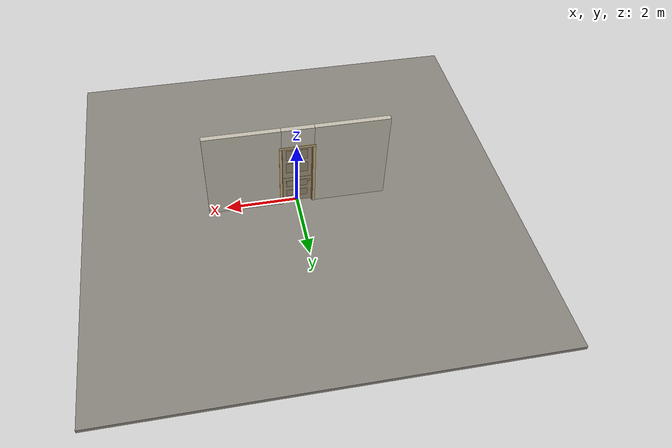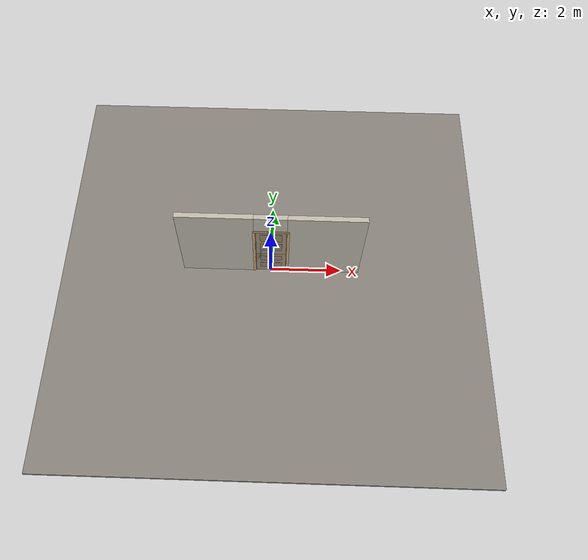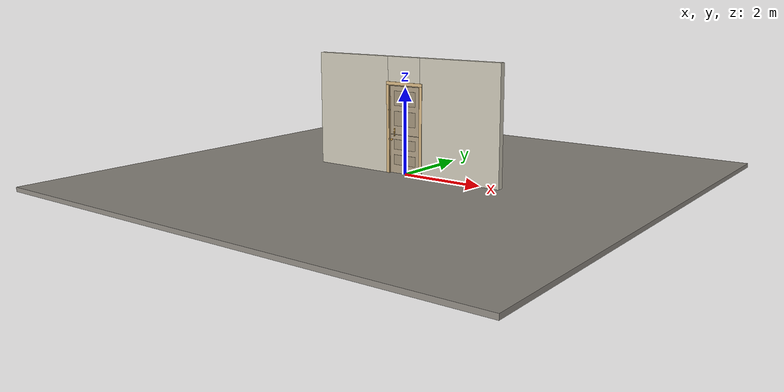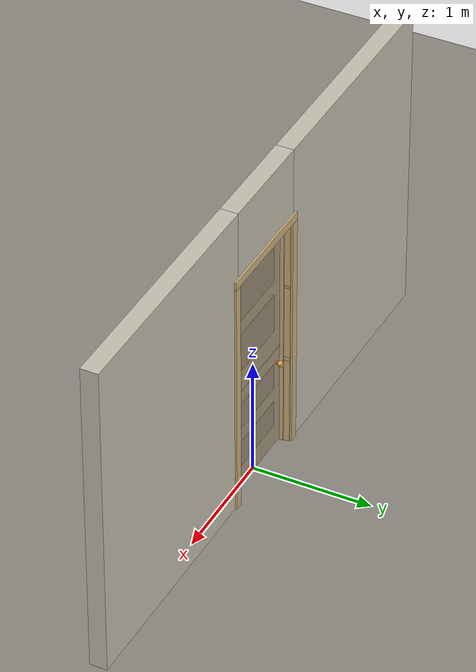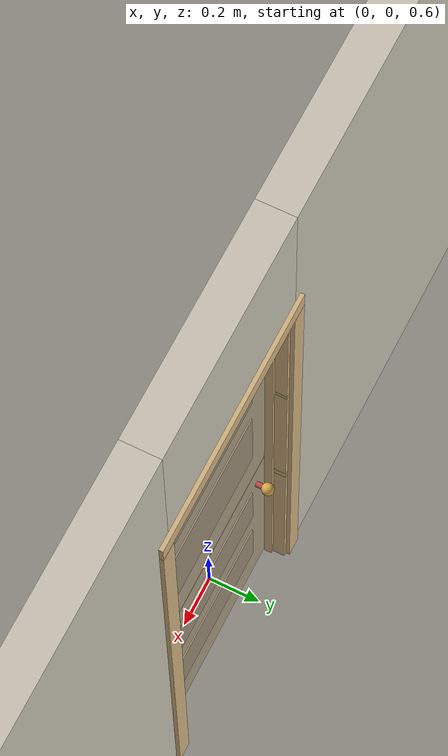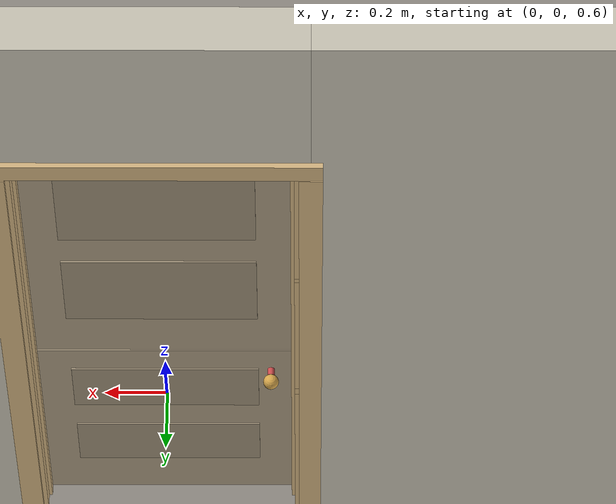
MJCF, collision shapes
<?xml version="1.0" ?>
<mujoco model="db0423_dutch_full">
  <compiler angle="radian" meshdir="../../hardware" texturedir="../../textures" autolimits="true" inertiafromgeom="false"/>
  <option timestep="0.002" integrator="implicitfast" cone="elliptic" impratio="10" noslip_iterations="3">
    <flag multiccd="enable"/>
  </option>
  <size memory="16M"/>
  <default>
    <geom condim="4" solref="0.005 1" solimp="0.95 0.99 0.001"/>
    <joint solreflimit="0.005 1" solimplimit="0.95 0.99 0.001"/>
    <tendon solreflimit="0.005 1"/>
    <equality solref="0.002 1"/>
  </default>
  <visual>
    <headlight ambient="0.4 0.4 0.4" diffuse="0.7 0.7 0.7" specular="0.2 0.2 0.2"/>
    <quality shadowsize="4096"/>
    <map znear="0.01" zfar="60"/>
  </visual>
  <asset>
    <mesh name="hinge_e22b26c0c1" file="hinge_e22b26c0c1.obj"/>
    <mesh name="hinge_jamb_e1d088f8dc" file="hinge_jamb_e1d088f8dc.obj"/>
    <mesh name="knob_d1888f6f03" file="knob_d1888f6f03.obj"/>
    <material name="mat_floor" rgba="0.55 0.53 0.5 1" specular="0.2" shininess="0.15" reflectance="0"/>
    <material name="mat_wall" rgba="0.78 0.76 0.7 1" specular="0.2" shininess="0.1" reflectance="0"/>
    <material name="mat_leaf_lower" rgba="0.66 0.6 0.5 1" specular="0.2" shininess="0.45" reflectance="0"/>
    <material name="mat_leaf_lower_panel" rgba="0.607 0.552 0.46 1" specular="0.2" shininess="0.45" reflectance="0"/>
    <material name="mat_leaf_upper" rgba="0.66 0.6 0.5 1" specular="0.2" shininess="0.45" reflectance="0"/>
    <material name="mat_leaf_upper_panel" rgba="0.607 0.552 0.46 1" specular="0.2" shininess="0.45" reflectance="0"/>
    <material name="mat_op_brass" rgba="0.85 0.66 0.3 1" specular="0.8" shininess="0.75" reflectance="0.4"/>
    <material name="mat_trim" rgba="0.85 0.66 0.3 1" specular="0.8" shininess="0.75" reflectance="0.4"/>
    <material name="mat_bolt" rgba="0.85 0.66 0.3 1" specular="0.8" shininess="0.75" reflectance="0.4"/>
    <material name="mat_joinbolt" rgba="0.85 0.66 0.3 1" specular="0.8" shininess="0.75" reflectance="0.4"/>
    <material name="mat_frame" rgba="0.82 0.7 0.5 1" specular="0.2" shininess="0.45" reflectance="0"/>
    <material name="mat_hinge" rgba="0.65 0.66 0.68 1" specular="0.74" shininess="0.5" reflectance="0.36"/>
    <texture name="skybox" type="skybox" builtin="gradient" rgb1="0.6 0.7 0.85" rgb2="0.9 0.92 0.95" width="256" height="256"/>
  </asset>
  <worldbody>
    <light name="sun" pos="1.5 -2.5 4" dir="-0.3 0.5 -0.8" directional="true" diffuse="0.8 0.8 0.8" specular="0.3 0.3 0.3" castshadow="true"/>
    <light name="fill" pos="-1.5 2.5 3" dir="0.3 -0.5 -0.7" directional="true" diffuse="0.35 0.35 0.4" castshadow="false"/>
    <camera name="robot_view" pos="0 -2.511687 1.734312" xyaxes="1 0 0 0 0.26963 0.962964" fovy="52"/>
    <camera name="far_view" pos="0 2.572687 1.734312" xyaxes="-1 0 0 0 -0.26963 0.962964" fovy="52"/>
    <camera name="iso" pos="-1.932062 -2.104938 2.141063" xyaxes="0.741536 -0.670913 0 0.242917 0.268487 0.932151" fovy="46"/>
    <camera name="detail_handle" pos="-0.1555 -0.8685 1.074" xyaxes="0.97561 0.219512 0 -0.070934 0.315262 0.94635" fovy="38"/>
    <geom name="floor" type="box" size="6 6 0.05" pos="0 0 -0.05" material="mat_floor" group="0" contype="1" conaffinity="1" friction="0.8 0.005 0.0001" density="2400"/>
    <geom name="wall_left" type="box" size="1.02025 0.0725 1.35" pos="-1.47975 0.0305 1.35" material="mat_wall" group="0" contype="1" conaffinity="1" friction="0.6 0.005 0.0001" density="800"/>
    <geom name="wall_right" type="box" size="1.03525 0.0725 1.35" pos="1.46475 0.0305 1.35" material="mat_wall" group="0" contype="1" conaffinity="1" friction="0.6 0.005 0.0001" density="800"/>
    <geom name="wall_header" type="box" size="0.4445 0.0725 0.303" pos="-0.015 0.0305 2.397" material="mat_wall" group="0" contype="1" conaffinity="1" friction="0.6 0.005 0.0001" density="800"/>
    <geom name="jamb_hinge" type="box" size="0.0095 0.0725 1.0225" pos="0.42 0.0305 1.0225" material="mat_frame" group="0" contype="1" conaffinity="1" friction="0.6 0.005 0.0001" density="400"/>
    <geom name="strike_794_wall_n" type="box" size="0.0245 0.047575 0.0167" pos="-0.435 0.055425 0.794" material="mat_frame" group="0" contype="1" conaffinity="1" friction="0.6 0.005 0.0001" density="400"/>
    <geom name="strike_794_wall_p" type="box" size="0.0245 0.008 0.0167" pos="-0.435 -0.01585 0.794" material="mat_frame" group="0" contype="1" conaffinity="1" friction="0.6 0.005 0.0001" density="400"/>
    <geom name="strike_794_ramp" type="box" size="0.0245 0.020268 0.0167" pos="-0.440408 -0.034645 0.794" quat="0.985179 0 0 -0.171531" material="mat_frame" group="0" contype="1" conaffinity="1" friction="0.12 0.005 0.0001" density="400"/>
    <geom name="strike_794_back" type="box" size="0.01615 0.00785 0.0167" pos="-0.44335 0 0.794" material="mat_frame" group="0" contype="1" conaffinity="1" friction="0.6 0.005 0.0001" density="400"/>
    <geom name="strike_1473_wall_n" type="box" size="0.0245 0.04775 0.01" pos="-0.435 0.05525 1.473" material="mat_frame" group="0" contype="1" conaffinity="1" friction="0.6 0.005 0.0001" density="400"/>
    <geom name="strike_1473_wall_p" type="box" size="0.0245 0.008 0.01" pos="-0.435 -0.0155 1.473" material="mat_frame" group="0" contype="1" conaffinity="1" friction="0.6 0.005 0.0001" density="400"/>
    <geom name="strike_1473_ramp" type="box" size="0.0245 0.019412 0.01" pos="-0.437296 -0.039595 1.473" quat="0.997916 0 0 -0.064529" material="mat_frame" group="0" contype="1" conaffinity="1" friction="0.12 0.005 0.0001" density="400"/>
    <geom name="strike_1473_ramp_n" type="box" size="0.0245 0.019412 0.01" pos="-0.437296 0.027595 1.473" quat="0.997916 0 0 0.064529" material="mat_frame" group="0" contype="1" conaffinity="1" friction="0.12 0.005 0.0001" density="400"/>
    <geom name="strike_1473_back" type="box" size="0.0205 0.0075 0.01" pos="-0.439 0 1.473" material="mat_frame" group="0" contype="1" conaffinity="1" friction="0.6 0.005 0.0001" density="400"/>
    <geom name="jamb_strike_0" type="box" size="0.0245 0.0725 0.38865" pos="-0.435 0.0305 0.38865" material="mat_frame" group="0" contype="1" conaffinity="1" friction="0.6 0.005 0.0001" density="400"/>
    <geom name="jamb_strike_1" type="box" size="0.0245 0.0725 0.32615" pos="-0.435 0.0305 1.13685" material="mat_frame" group="0" contype="1" conaffinity="1" friction="0.6 0.005 0.0001" density="400"/>
    <geom name="jamb_strike_2" type="box" size="0.0245 0.0725 0.281" pos="-0.435 0.0305 1.764" material="mat_frame" group="0" contype="1" conaffinity="1" friction="0.6 0.005 0.0001" density="400"/>
    <geom name="jamb_head" type="box" size="0.4445 0.0725 0.0095" pos="-0.015 0.0305 2.0545" material="mat_frame" group="0" contype="1" conaffinity="1" friction="0.6 0.005 0.0001" density="400"/>
    <geom name="head_stud" type="box" size="0.4445 0.0725 0.015" pos="-0.015 0.0305 2.079" material="mat_wall" group="0" contype="1" conaffinity="1" friction="0.6 0.005 0.0001" density="500"/>
    <geom name="stop_hinge" type="box" size="0.0055 0.016 1.0225" pos="0.405 0.0385 1.0225" material="mat_frame" group="0" contype="1" conaffinity="1" friction="0.6 0.005 0.0001" density="400"/>
    <geom name="stop_strike" type="box" size="0.0055 0.016 1.0225" pos="-0.405 0.0385 1.0225" material="mat_frame" group="0" contype="1" conaffinity="1" friction="0.6 0.005 0.0001" density="400"/>
    <geom name="stop_head" type="box" size="0.4105 0.016 0.0055" pos="0 0.0385 2.0395" material="mat_frame" group="0" contype="1" conaffinity="1" friction="0.6 0.005 0.0001" density="400"/>
    <geom name="casing_l_n" type="box" size="0.035 0.008 1.032" pos="-0.4595 -0.05 1.0225" material="mat_frame" group="2" contype="0" conaffinity="0" density="400"/>
    <geom name="casing_r_n" type="box" size="0.035 0.008 1.032" pos="0.4595 -0.05 1.0225" material="mat_frame" group="2" contype="0" conaffinity="0" density="400"/>
    <geom name="casing_h_n" type="box" size="0.4945 0.008 0.035" pos="0 -0.05 2.094" material="mat_frame" group="2" contype="0" conaffinity="0" density="400"/>
    <geom name="casing_l_p" type="box" size="0.035 0.008 1.032" pos="-0.4595 0.111 1.0225" material="mat_frame" group="2" contype="0" conaffinity="0" density="400"/>
    <geom name="casing_r_p" type="box" size="0.035 0.008 1.032" pos="0.4595 0.111 1.0225" material="mat_frame" group="2" contype="0" conaffinity="0" density="400"/>
    <geom name="casing_h_p" type="box" size="0.4945 0.008 0.035" pos="0 0.111 2.094" material="mat_frame" group="2" contype="0" conaffinity="0" density="400"/>
    <geom name="hinge_0_jamb" type="mesh" mesh="hinge_jamb_e1d088f8dc" pos="0.4105 -0.029 0.262" quat="0 0 1 0" material="mat_hinge" group="1" contype="0" conaffinity="0" density="7850"/>
    <geom name="hinge_1_jamb" type="mesh" mesh="hinge_jamb_e1d088f8dc" pos="0.4105 -0.029 0.418" quat="0 0 1 0" material="mat_hinge" group="1" contype="0" conaffinity="0" density="7850"/>
    <geom name="hinge_2_jamb" type="mesh" mesh="hinge_jamb_e1d088f8dc" pos="0.4105 -0.029 0.574" quat="0 0 1 0" material="mat_hinge" group="1" contype="0" conaffinity="0" density="7850"/>
    <geom name="hinge_3_jamb" type="mesh" mesh="hinge_jamb_e1d088f8dc" pos="0.4105 -0.029 0.73" quat="0 0 1 0" material="mat_hinge" group="1" contype="0" conaffinity="0" density="7850"/>
    <geom name="hinge_0_jamb_2" type="mesh" mesh="hinge_jamb_e1d088f8dc" pos="0.4105 -0.029 1.168" quat="0 0 1 0" material="mat_hinge" group="1" contype="0" conaffinity="0" density="7850"/>
    <geom name="hinge_1_jamb_2" type="mesh" mesh="hinge_jamb_e1d088f8dc" pos="0.4105 -0.029 1.396" quat="0 0 1 0" material="mat_hinge" group="1" contype="0" conaffinity="0" density="7850"/>
    <geom name="hinge_2_jamb_2" type="mesh" mesh="hinge_jamb_e1d088f8dc" pos="0.4105 -0.029 1.624" quat="0 0 1 0" material="mat_hinge" group="1" contype="0" conaffinity="0" density="7850"/>
    <geom name="hinge_3_jamb_2" type="mesh" mesh="hinge_jamb_e1d088f8dc" pos="0.4105 -0.029 1.852" quat="0 0 1 0" material="mat_hinge" group="1" contype="0" conaffinity="0" density="7850"/>
    <site name="approach_point" pos="0 -1.5 0" quat="1 0 0 0" size="0.05" rgba="0.2 0.9 0.2 0.5" group="4"/>
    <site name="goal_point" pos="0 1.5 0" quat="1 0 0 0" size="0.05" rgba="0.2 0.9 0.2 0.5" group="4"/>
    <site name="door_plane_center" pos="0 0 1.0225" quat="1 0 0 0" size="0.02" rgba="0.2 0.9 0.2 0.5" group="4"/>
    <body name="leaf_lower" pos="0.4105 0 0">
      <inertial pos="-0.062087 -0.018029 0.520402" mass="13.003191" quat="-0.274952 0.271264 0.650454 0.654008" diaginertia="0.300895514 0.722468823 1.016754681"/>
      <joint name="leaf_lower_hinge" type="hinge" axis="0 0 1" pos="-0.003 -0.029 0" limited="true" range="0 1.745329" damping="0.210326" frictionloss="0.281184" armature="0.02"/>
      <geom name="leaf_lower_slab" type="box" size="0.4065 0.022 0.449" pos="-0.4095 0 0.461" material="mat_leaf_lower" group="0" contype="1" conaffinity="1" friction="0.35 0.005 0.0001" density="1"/>
      <geom name="leaf_lower_panel_0_n" type="box" size="0.2965 0.003 0.1145" pos="-0.4095 -0.025 0.3265" material="mat_leaf_lower_panel" group="1" contype="0" conaffinity="0" density="1"/>
      <geom name="leaf_lower_panel_0_p" type="box" size="0.2965 0.003 0.1145" pos="-0.4095 0.025 0.3265" material="mat_leaf_lower_panel" group="1" contype="0" conaffinity="0" density="1"/>
      <geom name="leaf_lower_panel_1_n" type="box" size="0.2965 0.003 0.1145" pos="-0.4095 -0.025 0.6855" material="mat_leaf_lower_panel" group="1" contype="0" conaffinity="0" density="1"/>
      <geom name="leaf_lower_panel_1_p" type="box" size="0.2965 0.003 0.1145" pos="-0.4095 0.025 0.6855" material="mat_leaf_lower_panel" group="1" contype="0" conaffinity="0" density="1"/>
      <geom name="lower_latch_bolt_faceplate" type="box" size="0.0006 0.01235 0.0267" pos="-0.8154 0 0.794" material="mat_bolt" group="1" contype="0" conaffinity="0" density="8500"/>
      <geom name="join_keeper_leg_n" type="box" size="0.007 0.0025 0.013" pos="-0.7075 -0.035 0.884" quat="-0.5 -0.5 -0.5 0.5" material="mat_joinbolt" group="0" contype="1" conaffinity="1" friction="0.6 0.005 0.0001" density="7800"/>
      <geom name="join_keeper_leg_p" type="box" size="0.007 0.0025 0.013" pos="-0.6845 -0.035 0.884" quat="-0.5 -0.5 -0.5 0.5" material="mat_joinbolt" group="0" contype="1" conaffinity="1" friction="0.6 0.005 0.0001" density="7800"/>
      <geom name="join_keeper_bridge" type="box" size="0.007 0.014 0.0025" pos="-0.696 -0.0455 0.884" quat="-0.5 -0.5 -0.5 0.5" material="mat_joinbolt" group="0" contype="1" conaffinity="1" friction="0.6 0.005 0.0001" density="7800"/>
      <geom name="join_keeper_base" type="box" size="0.013 0.02 0.001" pos="-0.696 -0.023 0.884" quat="-0.5 -0.5 -0.5 0.5" material="mat_joinbolt" group="1" contype="0" conaffinity="0" density="7800"/>
      <geom name="hinge_0" type="mesh" mesh="hinge_e22b26c0c1" pos="0 -0.029 0.262" quat="0 0 1 0" material="mat_hinge" group="1" contype="0" conaffinity="0" density="7850"/>
      <geom name="hinge_1" type="mesh" mesh="hinge_e22b26c0c1" pos="0 -0.029 0.418" quat="0 0 1 0" material="mat_hinge" group="1" contype="0" conaffinity="0" density="7850"/>
      <geom name="hinge_2" type="mesh" mesh="hinge_e22b26c0c1" pos="0 -0.029 0.574" quat="0 0 1 0" material="mat_hinge" group="1" contype="0" conaffinity="0" density="7850"/>
      <geom name="hinge_3" type="mesh" mesh="hinge_e22b26c0c1" pos="0 -0.029 0.73" quat="0 0 1 0" material="mat_hinge" group="1" contype="0" conaffinity="0" density="7850"/>
      <body name="lower_handle" pos="-0.746 0 0.794">
        <inertial pos="0 0 0" mass="1.151952" quat="0.707107 0 0 -0.707107" diaginertia="0.000312514 0.004264603 0.004264603"/>
        <joint name="lower_handle_hinge" type="hinge" axis="0 1 0" limited="true" range="0 0.87" damping="0.143614" frictionloss="0.038" stiffness="0.5" springref="-0.5" armature="0.01"/>
        <geom name="lower_handle_spindle" type="cylinder" size="0.006 0.03" pos="0 0 0" quat="0.707107 -0.707107 0 0" material="mat_op_brass" group="1" contype="0" conaffinity="0" density="7850"/>
        <geom name="lower_handle_knob_n" type="mesh" mesh="knob_d1888f6f03" pos="0 -0.022 0" quat="0 0 -0.707107 0.707107" material="mat_op_brass" group="1" contype="0" conaffinity="0" density="3000"/>
        <geom name="lower_handle_knob_col_n" type="sphere" size="0.0243" pos="0 -0.0685 0" material="mat_op_brass" group="0" contype="1" conaffinity="1" friction="0.9 0.01 0.0001" density="3000"/>
        <geom name="lower_handle_knob_neck_n" type="cylinder" size="0.011 0.012" pos="0 -0.034 0" quat="0.707107 -0.707107 0 0" material="mat_op_brass" group="3" contype="1" conaffinity="1" rgba="0.8 0.3 0.3 0.25" friction="0.6 0.005 0.0001" density="3000"/>
        <geom name="lower_handle_knob_p" type="mesh" mesh="knob_d1888f6f03" pos="0 0.022 0" quat="0 0 0.707107 0.707107" material="mat_op_brass" group="1" contype="0" conaffinity="0" density="3000"/>
        <geom name="lower_handle_knob_col_p" type="sphere" size="0.0243" pos="0 0.0685 0" material="mat_op_brass" group="0" contype="1" conaffinity="1" friction="0.9 0.01 0.0001" density="3000"/>
        <geom name="lower_handle_knob_neck_p" type="cylinder" size="0.011 0.012" pos="0 0.034 0" quat="0.707107 -0.707107 0 0" material="mat_op_brass" group="3" contype="1" conaffinity="1" rgba="0.8 0.3 0.3 0.25" friction="0.6 0.005 0.0001" density="3000"/>
        <site name="lower_handle_grip_n" pos="0 -0.0685 0" quat="1 0 0 0" size="0.012" rgba="0.2 0.9 0.2 0.5" group="4"/>
        <site name="lower_handle_grip_p" pos="0 0.0685 0" quat="1 0 0 0" size="0.012" rgba="0.2 0.9 0.2 0.5" group="4"/>
      </body>
      <body name="lower_latch_bolt" pos="-0.816 0 0.794">
        <inertial pos="0.00865 0 0" mass="0.041419" quat="0.92388 0.382683 0 0" diaginertia="0.000000798 0.000005598 0.000005598"/>
        <joint name="lower_latch_bolt_slide" type="slide" axis="1 0 0" limited="true" range="0 0.0127" damping="2" frictionloss="0.3" stiffness="300" springref="-0.008333" armature="0.1"/>
        <geom name="lower_latch_bolt_capsule" type="capsule" size="0.00635 0.015" pos="0.00865 0 0" quat="0.707107 0 -0.707107 0" material="mat_bolt" group="0" contype="1" conaffinity="1" friction="0.2 0.005 0.0001" density="8500"/>
      </body>
    </body>
    <body name="leaf_upper" pos="0.4105 0 0">
      <inertial pos="-0.102644 -0.018408 1.448449" mass="16.398296" quat="-0.330609 -0.325869 -0.625399 0.627202" diaginertia="0.570095446 1.839647626 2.401793547"/>
      <joint name="leaf_upper_hinge" type="hinge" axis="0 0 1" pos="-0.003 -0.029 0" limited="true" range="0 1.745329" damping="0.210326" frictionloss="0.281184" armature="0.02"/>
      <geom name="leaf_upper_slab" type="box" size="0.4065 0.022 0.557" pos="-0.4095 0 1.475" material="mat_leaf_upper" group="0" contype="1" conaffinity="1" friction="0.35 0.005 0.0001" density="1"/>
      <geom name="leaf_upper_panel_0_n" type="box" size="0.2965 0.003 0.1685" pos="-0.4095 -0.025 1.2865" material="mat_leaf_upper_panel" group="1" contype="0" conaffinity="0" density="1"/>
      <geom name="leaf_upper_panel_0_p" type="box" size="0.2965 0.003 0.1685" pos="-0.4095 0.025 1.2865" material="mat_leaf_upper_panel" group="1" contype="0" conaffinity="0" density="1"/>
      <geom name="leaf_upper_panel_1_n" type="box" size="0.2965 0.003 0.1685" pos="-0.4095 -0.025 1.7535" material="mat_leaf_upper_panel" group="1" contype="0" conaffinity="0" density="1"/>
      <geom name="leaf_upper_panel_1_p" type="box" size="0.2965 0.003 0.1685" pos="-0.4095 0.025 1.7535" material="mat_leaf_upper_panel" group="1" contype="0" conaffinity="0" density="1"/>
      <geom name="upper_catch_faceplate" type="box" size="0.0006 0.012 0.02" pos="-0.8154 0 1.473" material="mat_bolt" group="1" contype="0" conaffinity="0" density="8500"/>
      <geom name="join_bolt_plate" type="box" size="0.064 0.019 0.001" pos="-0.696 -0.023 0.99" quat="-0.5 -0.5 -0.5 0.5" material="mat_joinbolt" group="1" contype="0" conaffinity="0" density="7800"/>
      <geom name="join_bolt_guide_0_leg_n" type="box" size="0.006 0.002 0.0125" pos="-0.707 -0.0345 0.934" quat="-0.5 -0.5 -0.5 0.5" material="mat_joinbolt" group="1" contype="0" conaffinity="0" density="7800"/>
      <geom name="join_bolt_guide_0_leg_p" type="box" size="0.006 0.002 0.0125" pos="-0.685 -0.0345 0.934" quat="-0.5 -0.5 -0.5 0.5" material="mat_joinbolt" group="1" contype="0" conaffinity="0" density="7800"/>
      <geom name="join_bolt_guide_0_bridge" type="box" size="0.006 0.013 0.002" pos="-0.696 -0.045 0.934" quat="-0.5 -0.5 -0.5 0.5" material="mat_joinbolt" group="1" contype="0" conaffinity="0" density="7800"/>
      <geom name="join_bolt_guide_1_leg_n" type="box" size="0.006 0.002 0.0125" pos="-0.707 -0.0345 1.044" quat="-0.5 -0.5 -0.5 0.5" material="mat_joinbolt" group="1" contype="0" conaffinity="0" density="7800"/>
      <geom name="join_bolt_guide_1_leg_p" type="box" size="0.006 0.002 0.0125" pos="-0.685 -0.0345 1.044" quat="-0.5 -0.5 -0.5 0.5" material="mat_joinbolt" group="1" contype="0" conaffinity="0" density="7800"/>
      <geom name="join_bolt_guide_1_bridge" type="box" size="0.006 0.013 0.002" pos="-0.696 -0.045 1.044" quat="-0.5 -0.5 -0.5 0.5" material="mat_joinbolt" group="1" contype="0" conaffinity="0" density="7800"/>
      <geom name="hinge_0_2" type="mesh" mesh="hinge_e22b26c0c1" pos="0 -0.029 1.168" quat="0 0 1 0" material="mat_hinge" group="1" contype="0" conaffinity="0" density="7850"/>
      <geom name="hinge_1_2" type="mesh" mesh="hinge_e22b26c0c1" pos="0 -0.029 1.396" quat="0 0 1 0" material="mat_hinge" group="1" contype="0" conaffinity="0" density="7850"/>
      <geom name="hinge_2_2" type="mesh" mesh="hinge_e22b26c0c1" pos="0 -0.029 1.624" quat="0 0 1 0" material="mat_hinge" group="1" contype="0" conaffinity="0" density="7850"/>
      <geom name="hinge_3_2" type="mesh" mesh="hinge_e22b26c0c1" pos="0 -0.029 1.852" quat="0 0 1 0" material="mat_hinge" group="1" contype="0" conaffinity="0" density="7850"/>
      <body name="upper_catch" pos="-0.816 0 1.473">
        <inertial pos="0.013 0 0" mass="0.02884" quat="0 0 -0.707107 0.707107" diaginertia="0.000000491 0.000002465 0.000002465"/>
        <joint name="upper_catch_slide" type="slide" axis="1 0 0" limited="true" range="0 0.004" damping="2" frictionloss="0.3" stiffness="4000" springref="-0.00375" armature="0.1"/>
        <geom name="upper_catch_capsule" type="capsule" size="0.006 0.011" pos="0.013 0 0" quat="0.707107 0 -0.707107 0" material="mat_bolt" group="0" contype="1" conaffinity="1" friction="0.2 0.005 0.0001" density="8500"/>
      </body>
      <body name="join_bolt" pos="-0.696 -0.034 0.918">
        <inertial pos="0 -0.00492 0.025264" mass="0.111784" quat="-0.065075 0.704106 -0.065075 0.704106" diaginertia="0.000009833 0.000100603 0.000108548"/>
        <joint name="join_bolt_slide" type="slide" axis="0 0 1" limited="true" range="0 0.05" damping="1" frictionloss="1" armature="0.1"/>
        <geom name="join_bolt_rod" type="capsule" size="0.006 0.044" pos="0 0 0.016" quat="0 1 0 0" material="mat_joinbolt" group="0" contype="1" conaffinity="1" friction="0.6 0.005 0.0001" density="7850"/>
        <geom name="join_bolt_knob" type="capsule" size="0.005 0.01" pos="0 -0.015 0.055" quat="0.707107 0.707107 0 0" material="mat_joinbolt" group="0" contype="1" conaffinity="1" friction="0.6 0.005 0.0001" density="7850"/>
        <geom name="join_bolt_knob_end" type="sphere" size="0.00675" pos="0 -0.03 0.055" material="mat_joinbolt" group="1" contype="0" conaffinity="0" density="7850"/>
        <site name="join_bolt_grip" pos="0 -0.034 0.055" quat="1 0 0 0" size="0.012" rgba="0.2 0.9 0.2 0.5" group="4"/>
      </body>
    </body>
  </worldbody>
  <tendon>
    <fixed name="lower_latch_bolt_coupling" limited="true" range="0 10">
      <joint joint="lower_latch_bolt_slide" coef="1"/>
      <joint joint="lower_handle_hinge" coef="-0.015679"/>
    </fixed>
  </tendon>
  <sensor>
    <jointpos name="leaf_lower_hinge_pos" joint="leaf_lower_hinge"/>
    <jointvel name="leaf_lower_hinge_vel" joint="leaf_lower_hinge"/>
    <jointpos name="leaf_upper_hinge_pos" joint="leaf_upper_hinge"/>
    <jointvel name="leaf_upper_hinge_vel" joint="leaf_upper_hinge"/>
    <jointpos name="lower_handle_hinge_pos" joint="lower_handle_hinge"/>
    <jointvel name="lower_handle_hinge_vel" joint="lower_handle_hinge"/>
    <jointpos name="lower_latch_bolt_slide_pos" joint="lower_latch_bolt_slide"/>
    <jointvel name="lower_latch_bolt_slide_vel" joint="lower_latch_bolt_slide"/>
    <jointpos name="upper_catch_slide_pos" joint="upper_catch_slide"/>
    <jointvel name="upper_catch_slide_vel" joint="upper_catch_slide"/>
    <jointpos name="join_bolt_slide_pos" joint="join_bolt_slide"/>
    <jointvel name="join_bolt_slide_vel" joint="join_bolt_slide"/>
  </sensor>
</mujoco>
